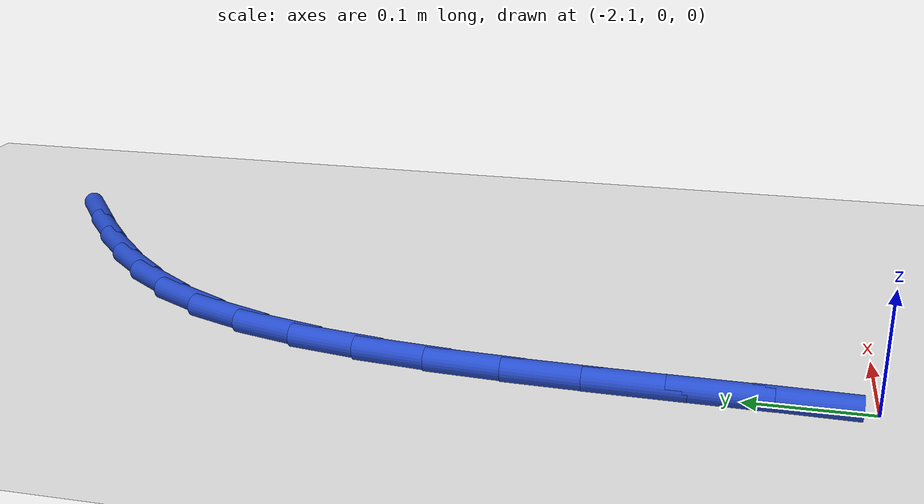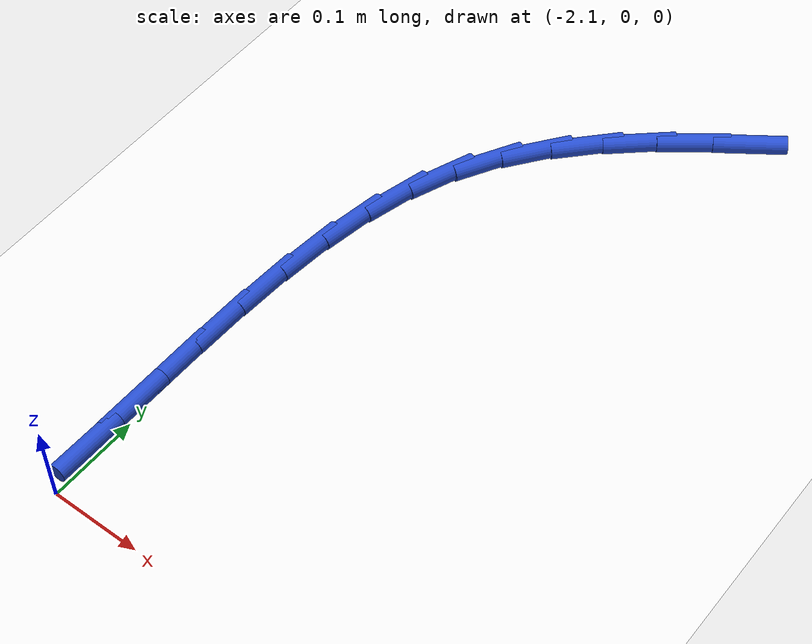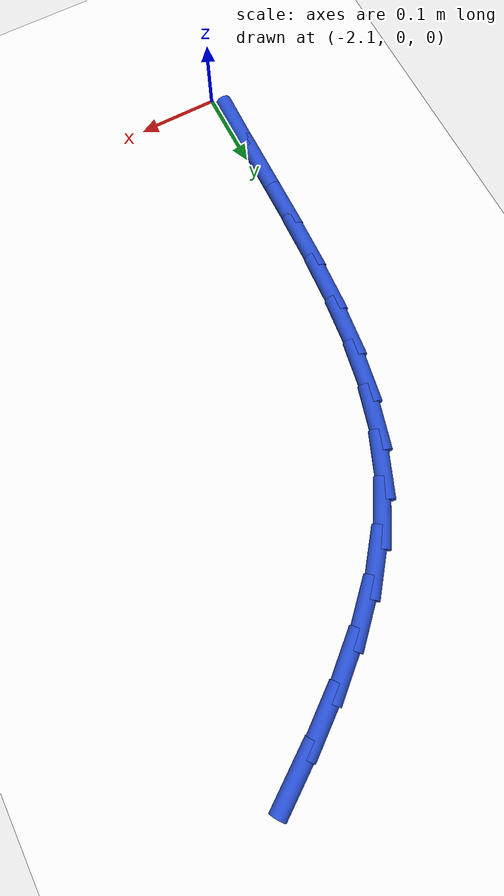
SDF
<sdf version="1.6">
 <world name="default">
  <model name="ground_plane">
   <static>1</static>
   <link name="link">
    <collision name="collision">
     <geometry><plane><normal>0 0 1</normal><size>100 100</size></plane></geometry>
     <surface><friction><ode><mu>100</mu><mu2>50</mu2></ode></friction></surface>
    </collision>
    <visual name="visual">
     <cast_shadows>0</cast_shadows>
     <geometry><plane><normal>0 0 1</normal><size>100 100</size></plane></geometry>
     <material>
      <script><uri>file://media/materials/scripts/gazebo.material</uri><name>Gazebo/WhiteGlow</name></script>
     </material>
    </visual>
   </link>
  </model>
  <model name="line">
   <link name="link_45">
    <pose>-1.8152739992980247 0.7649593083992653 0.01 0 1.57 0.6106487243075386</pose>
    <collision name="collision">
     <geometry><cylinder><radius>0.01</radius><length>0.08</length></cylinder></geometry>
    </collision>
    <visual name="visual">
     <material>
      <script><name>Gazebo/Blue</name><uri>file://media/materials/scripts/gazebo.material</uri></script>
     </material>
     <geometry><cylinder><radius>0.01</radius><length>0.08</length></cylinder></geometry>
    </visual>
   </link>
   <link name="link_46">
    <pose>-1.864577735517235 0.7304523669937222 0.01 0 1.57 0.6551627461815266</pose>
    <collision name="collision">
     <geometry><cylinder><radius>0.01</radius><length>0.08</length></cylinder></geometry>
    </collision>
    <visual name="visual">
     <material>
      <script><name>Gazebo/Blue</name><uri>file://media/materials/scripts/gazebo.material</uri></script>
     </material>
     <geometry><cylinder><radius>0.01</radius><length>0.08</length></cylinder></geometry>
    </visual>
   </link>
   <link name="link_47">
    <pose>-1.9108301670498573 0.6949127884575561 0.01 0 1.57 0.7204772123338602</pose>
    <collision name="collision">
     <geometry><cylinder><radius>0.01</radius><length>0.08</length></cylinder></geometry>
    </collision>
    <visual name="visual">
     <material>
      <script><name>Gazebo/Blue</name><uri>file://media/materials/scripts/gazebo.material</uri></script>
     </material>
     <geometry><cylinder><radius>0.01</radius><length>0.08</length></cylinder></geometry>
    </visual>
   </link>
   <link name="link_48">
    <pose>-1.9532972090663505 0.6576304388646286 0.01 0 1.57 0.8084067433917983</pose>
    <collision name="collision">
     <geometry><cylinder><radius>0.01</radius><length>0.08</length></cylinder></geometry>
    </collision>
    <visual name="visual">
     <material>
      <script><name>Gazebo/Blue</name><uri>file://media/materials/scripts/gazebo.material</uri></script>
     </material>
     <geometry><cylinder><radius>0.01</radius><length>0.08</length></cylinder></geometry>
    </visual>
   </link>
   <link name="link_49">
    <pose>-1.9912447767371726 0.6178951842888006 0.01 0 1.57 0.9195781115764454</pose>
    <collision name="collision">
     <geometry><cylinder><radius>0.01</radius><length>0.08</length></cylinder></geometry>
    </collision>
    <visual name="visual">
     <material>
      <script><name>Gazebo/Blue</name><uri>file://media/materials/scripts/gazebo.material</uri></script>
     </material>
     <geometry><cylinder><radius>0.01</radius><length>0.08</length></cylinder></geometry>
    </visual>
   </link>
   <link name="link_50">
    <pose>-2.0239387852327853 0.5749968908039341 0.01 0 1.57 1.051964130372678</pose>
    <collision name="collision">
     <geometry><cylinder><radius>0.01</radius><length>0.08</length></cylinder></geometry>
    </collision>
    <visual name="visual">
     <material>
      <script><name>Gazebo/Blue</name><uri>file://media/materials/scripts/gazebo.material</uri></script>
     </material>
     <geometry><cylinder><radius>0.01</radius><length>0.08</length></cylinder></geometry>
    </visual>
   </link>
   <link name="link_51">
    <pose>-2.050645634371349 0.5282258270808649 0.01 0 1.57 1.1909199567847142</pose>
    <collision name="collision">
     <geometry><cylinder><radius>0.01</radius><length>0.08</length></cylinder></geometry>
    </collision>
    <visual name="visual">
     <material>
      <script><name>Gazebo/Blue</name><uri>file://media/materials/scripts/gazebo.material</uri></script>
     </material>
     <geometry><cylinder><radius>0.01</radius><length>0.08</length></cylinder></geometry>
    </visual>
   </link>
   <link name="link_52">
    <pose>-2.0710205703995013 0.4771952766207026 0.01 0 1.57 1.3071091148786786</pose>
    <collision name="collision">
     <geometry><cylinder><radius>0.01</radius><length>0.08</length></cylinder></geometry>
    </collision>
    <visual name="visual">
     <material>
      <script><name>Gazebo/Blue</name><uri>file://media/materials/scripts/gazebo.material</uri></script>
     </material>
     <geometry><cylinder><radius>0.01</radius><length>0.08</length></cylinder></geometry>
    </visual>
   </link>
   <link name="link_53">
    <pose>-2.0858076407517365 0.42242299035732184 0.01 0 1.57 1.3973741343981874</pose>
    <collision name="collision">
     <geometry><cylinder><radius>0.01</radius><length>0.08</length></cylinder></geometry>
    </collision>
    <visual name="visual">
     <material>
      <script><name>Gazebo/Blue</name><uri>file://media/materials/scripts/gazebo.material</uri></script>
     </material>
     <geometry><cylinder><radius>0.01</radius><length>0.08</length></cylinder></geometry>
    </visual>
   </link>
   <link name="link_54">
    <pose>-2.0959400177558534 0.36458382532314215 0.01 0 1.57 1.464758073700827</pose>
    <collision name="collision">
     <geometry><cylinder><radius>0.01</radius><length>0.08</length></cylinder></geometry>
    </collision>
    <visual name="visual">
     <material>
      <script><name>Gazebo/Blue</name><uri>file://media/materials/scripts/gazebo.material</uri></script>
     </material>
     <geometry><cylinder><radius>0.01</radius><length>0.08</length></cylinder></geometry>
    </visual>
   </link>
   <link name="link_55">
    <pose>-2.1023508737396526 0.3043526385505849 0.01 0 1.57 1.5123865929570757</pose>
    <collision name="collision">
     <geometry><cylinder><radius>0.01</radius><length>0.08</length></cylinder></geometry>
    </collision>
    <visual name="visual">
     <material>
      <script><name>Gazebo/Blue</name><uri>file://media/materials/scripts/gazebo.material</uri></script>
     </material>
     <geometry><cylinder><radius>0.01</radius><length>0.08</length></cylinder></geometry>
    </visual>
   </link>
   <link name="link_56">
    <pose>-2.1059733810309327 0.2424042870720695 0.01 0 1.57 1.5427466536628671</pose>
    <collision name="collision">
     <geometry><cylinder><radius>0.01</radius><length>0.08</length></cylinder></geometry>
    </collision>
    <visual name="visual">
     <material>
      <script><name>Gazebo/Blue</name><uri>file://media/materials/scripts/gazebo.material</uri></script>
     </material>
     <geometry><cylinder><radius>0.01</radius><length>0.08</length></cylinder></geometry>
    </visual>
   </link>
   <link name="link_57">
    <pose>-2.1077407119574936 0.1794136279200173 0.01 0 1.57 1.5574550712111501</pose>
    <collision name="collision">
     <geometry><cylinder><radius>0.01</radius><length>0.08</length></cylinder></geometry>
    </collision>
    <visual name="visual">
     <material>
      <script><name>Gazebo/Blue</name><uri>file://media/materials/scripts/gazebo.material</uri></script>
     </material>
     <geometry><cylinder><radius>0.01</radius><length>0.08</length></cylinder></geometry>
    </visual>
   </link>
   <link name="link_58">
    <pose>-2.1085860388471334 0.11605551812684785 0.01 0 1.57 1.5572129334818847</pose>
    <collision name="collision">
     <geometry><cylinder><radius>0.01</radius><length>0.08</length></cylinder></geometry>
    </collision>
    <visual name="visual">
     <material>
      <script><name>Gazebo/Blue</name><uri>file://media/materials/scripts/gazebo.material</uri></script>
     </material>
     <geometry><cylinder><radius>0.01</radius><length>0.08</length></cylinder></geometry>
    </visual>
   </link>
   <link name="link_59">
    <pose>-2.1094425340276524 0.053004814724982446 0.01 0 1.57 1.5447710754690465</pose>
    <collision name="collision">
     <geometry><cylinder><radius>0.01</radius><length>0.08</length></cylinder></geometry>
    </collision>
    <visual name="visual">
     <material>
      <script><name>Gazebo/Blue</name><uri>file://media/materials/scripts/gazebo.material</uri></script>
     </material>
     <geometry><cylinder><radius>0.01</radius><length>0.08</length></cylinder></geometry>
    </visual>
   </link>
  </model>
 </world>
</sdf>
